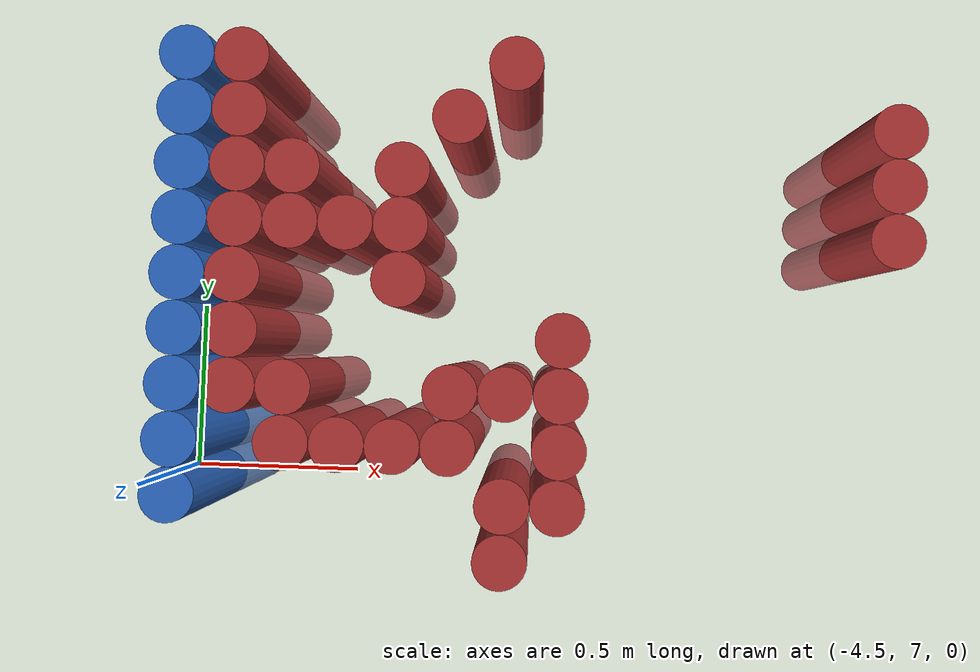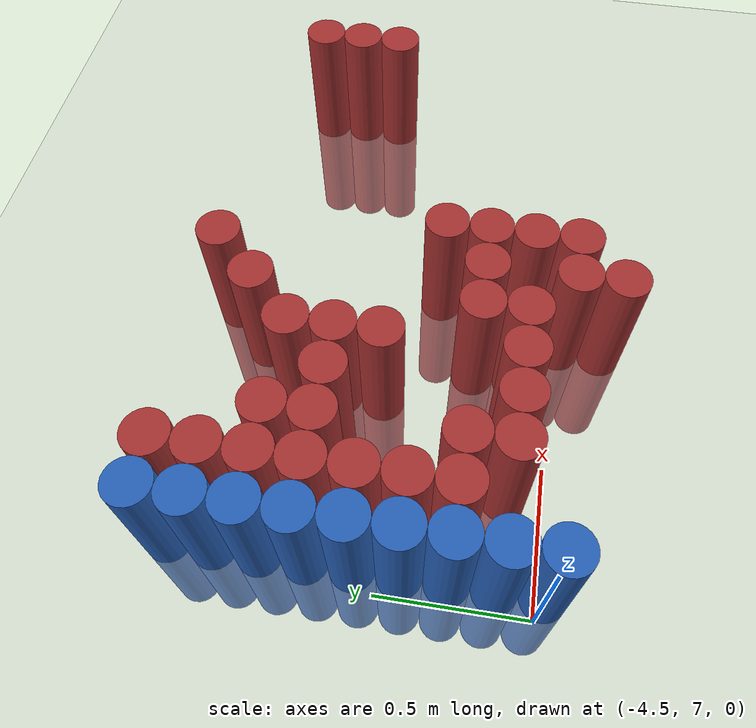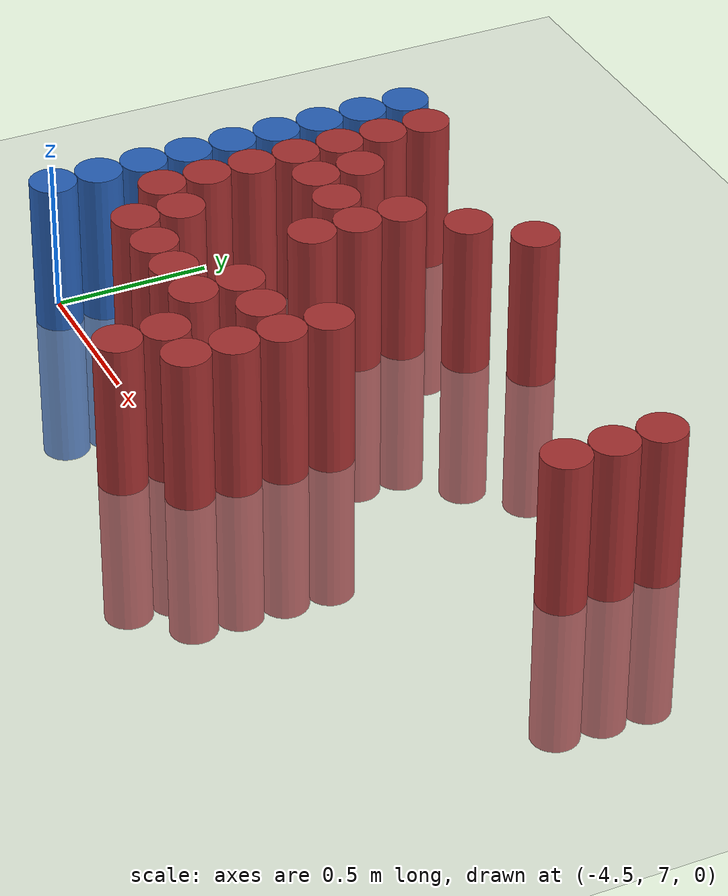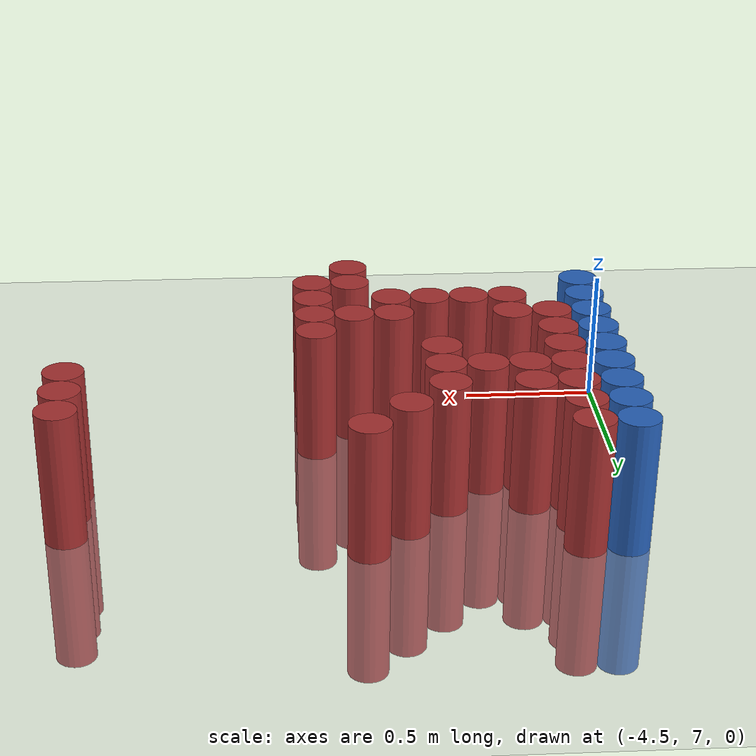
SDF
<sdf version="1.6">
 <world name="default">
  <model name="ground_plane">
   <static>1</static>
   <link name="link">
    <collision name="collision">
     <geometry><plane><normal>0 0 1</normal><size>100 100</size></plane></geometry>
     <surface><friction><ode><mu>100</mu><mu2>50</mu2></ode></friction></surface>
    </collision>
    <visual name="visual">
     <cast_shadows>0</cast_shadows>
     <geometry><plane><normal>0 0 1</normal><size>100 100</size></plane></geometry>
     <material>
      <script><uri>file://media/materials/scripts/gazebo.material</uri><name>Gazebo/Grey</name></script>
     </material>
    </visual>
   </link>
  </model>
  <model name="unit_cylinder_108">
   <static>1</static>
   <pose>-4.425000 6.975000 0.000000 0.000000 0.000000 0.000000</pose>
   <link name="link">
    <inertial>
     <mass>1</mass>
     <inertia><ixx>0.145833</ixx><ixy>0</ixy><ixz>0</ixz><iyy>0.145833</iyy><iyz>0</iyz><izz>0.125</izz></inertia>
    </inertial>
    <collision name="collision">
     <geometry><cylinder><radius>0.075000</radius><length>1</length></cylinder></geometry>
    </collision>
    <visual name="visual">
     <geometry><cylinder><radius>0.075000</radius><length>1</length></cylinder></geometry>
     <material>
      <ambient>0.152000 0.379000 0.720000 1</ambient>
      <diffuse>0.152000 0.379000 0.720000 1</diffuse>
     </material>
     <material>
      <script><name>Gazebo/Grey</name><uri>file://media/materials/scripts/gazebo.material</uri></script>
     </material>
    </visual>
    <sensor name="sensor_contact" type="contact"><contact><collision>collision</collision></contact></sensor>
   </link>
   <plugin filename="gz-sim-touchplugin-system" name="gz::sim::systems::TouchPlugin">
    <target>robot</target>
    <namespace>robot</namespace>
    <time>0.001</time>
    <enabled>true</enabled>
   </plugin>
  </model>
  <model name="unit_cylinder_109">
   <static>1</static>
   <pose>-4.425000 7.125000 0.000000 0.000000 0.000000 0.000000</pose>
   <link name="link">
    <inertial>
     <mass>1</mass>
     <inertia><ixx>0.145833</ixx><ixy>0</ixy><ixz>0</ixz><iyy>0.145833</iyy><iyz>0</iyz><izz>0.125</izz></inertia>
    </inertial>
    <collision name="collision">
     <geometry><cylinder><radius>0.075000</radius><length>1</length></cylinder></geometry>
    </collision>
    <visual name="visual">
     <geometry><cylinder><radius>0.075000</radius><length>1</length></cylinder></geometry>
     <material>
      <ambient>0.152000 0.379000 0.720000 1</ambient>
      <diffuse>0.152000 0.379000 0.720000 1</diffuse>
     </material>
     <material>
      <script><name>Gazebo/Grey</name><uri>file://media/materials/scripts/gazebo.material</uri></script>
     </material>
    </visual>
    <sensor name="sensor_contact" type="contact"><contact><collision>collision</collision></contact></sensor>
   </link>
   <plugin filename="gz-sim-touchplugin-system" name="gz::sim::systems::TouchPlugin">
    <target>robot</target>
    <namespace>robot</namespace>
    <time>0.001</time>
    <enabled>true</enabled>
   </plugin>
  </model>
  <model name="unit_cylinder_110">
   <static>1</static>
   <pose>-4.425000 7.275000 0.000000 0.000000 0.000000 0.000000</pose>
   <link name="link">
    <inertial>
     <mass>1</mass>
     <inertia><ixx>0.145833</ixx><ixy>0</ixy><ixz>0</ixz><iyy>0.145833</iyy><iyz>0</iyz><izz>0.125</izz></inertia>
    </inertial>
    <collision name="collision">
     <geometry><cylinder><radius>0.075000</radius><length>1</length></cylinder></geometry>
    </collision>
    <visual name="visual">
     <geometry><cylinder><radius>0.075000</radius><length>1</length></cylinder></geometry>
     <material>
      <ambient>0.152000 0.379000 0.720000 1</ambient>
      <diffuse>0.152000 0.379000 0.720000 1</diffuse>
     </material>
     <material>
      <script><name>Gazebo/Grey</name><uri>file://media/materials/scripts/gazebo.material</uri></script>
     </material>
    </visual>
    <sensor name="sensor_contact" type="contact"><contact><collision>collision</collision></contact></sensor>
   </link>
   <plugin filename="gz-sim-touchplugin-system" name="gz::sim::systems::TouchPlugin">
    <target>robot</target>
    <namespace>robot</namespace>
    <time>0.001</time>
    <enabled>true</enabled>
   </plugin>
  </model>
  <model name="unit_cylinder_111">
   <static>1</static>
   <pose>-4.425000 7.425000 0.000000 0.000000 0.000000 0.000000</pose>
   <link name="link">
    <inertial>
     <mass>1</mass>
     <inertia><ixx>0.145833</ixx><ixy>0</ixy><ixz>0</ixz><iyy>0.145833</iyy><iyz>0</iyz><izz>0.125</izz></inertia>
    </inertial>
    <collision name="collision">
     <geometry><cylinder><radius>0.075000</radius><length>1</length></cylinder></geometry>
    </collision>
    <visual name="visual">
     <geometry><cylinder><radius>0.075000</radius><length>1</length></cylinder></geometry>
     <material>
      <ambient>0.152000 0.379000 0.720000 1</ambient>
      <diffuse>0.152000 0.379000 0.720000 1</diffuse>
     </material>
     <material>
      <script><name>Gazebo/Grey</name><uri>file://media/materials/scripts/gazebo.material</uri></script>
     </material>
    </visual>
    <sensor name="sensor_contact" type="contact"><contact><collision>collision</collision></contact></sensor>
   </link>
   <plugin filename="gz-sim-touchplugin-system" name="gz::sim::systems::TouchPlugin">
    <target>robot</target>
    <namespace>robot</namespace>
    <time>0.001</time>
    <enabled>true</enabled>
   </plugin>
  </model>
  <model name="unit_cylinder_112">
   <static>1</static>
   <pose>-4.425000 7.575000 0.000000 0.000000 0.000000 0.000000</pose>
   <link name="link">
    <inertial>
     <mass>1</mass>
     <inertia><ixx>0.145833</ixx><ixy>0</ixy><ixz>0</ixz><iyy>0.145833</iyy><iyz>0</iyz><izz>0.125</izz></inertia>
    </inertial>
    <collision name="collision">
     <geometry><cylinder><radius>0.075000</radius><length>1</length></cylinder></geometry>
    </collision>
    <visual name="visual">
     <geometry><cylinder><radius>0.075000</radius><length>1</length></cylinder></geometry>
     <material>
      <ambient>0.152000 0.379000 0.720000 1</ambient>
      <diffuse>0.152000 0.379000 0.720000 1</diffuse>
     </material>
     <material>
      <script><name>Gazebo/Grey</name><uri>file://media/materials/scripts/gazebo.material</uri></script>
     </material>
    </visual>
    <sensor name="sensor_contact" type="contact"><contact><collision>collision</collision></contact></sensor>
   </link>
   <plugin filename="gz-sim-touchplugin-system" name="gz::sim::systems::TouchPlugin">
    <target>robot</target>
    <namespace>robot</namespace>
    <time>0.001</time>
    <enabled>true</enabled>
   </plugin>
  </model>
  <model name="unit_cylinder_113">
   <static>1</static>
   <pose>-4.425000 7.725000 0.000000 0.000000 0.000000 0.000000</pose>
   <link name="link">
    <inertial>
     <mass>1</mass>
     <inertia><ixx>0.145833</ixx><ixy>0</ixy><ixz>0</ixz><iyy>0.145833</iyy><iyz>0</iyz><izz>0.125</izz></inertia>
    </inertial>
    <collision name="collision">
     <geometry><cylinder><radius>0.075000</radius><length>1</length></cylinder></geometry>
    </collision>
    <visual name="visual">
     <geometry><cylinder><radius>0.075000</radius><length>1</length></cylinder></geometry>
     <material>
      <ambient>0.152000 0.379000 0.720000 1</ambient>
      <diffuse>0.152000 0.379000 0.720000 1</diffuse>
     </material>
     <material>
      <script><name>Gazebo/Grey</name><uri>file://media/materials/scripts/gazebo.material</uri></script>
     </material>
    </visual>
    <sensor name="sensor_contact" type="contact"><contact><collision>collision</collision></contact></sensor>
   </link>
   <plugin filename="gz-sim-touchplugin-system" name="gz::sim::systems::TouchPlugin">
    <target>robot</target>
    <namespace>robot</namespace>
    <time>0.001</time>
    <enabled>true</enabled>
   </plugin>
  </model>
  <model name="unit_cylinder_114">
   <static>1</static>
   <pose>-4.425000 7.875000 0.000000 0.000000 0.000000 0.000000</pose>
   <link name="link">
    <inertial>
     <mass>1</mass>
     <inertia><ixx>0.145833</ixx><ixy>0</ixy><ixz>0</ixz><iyy>0.145833</iyy><iyz>0</iyz><izz>0.125</izz></inertia>
    </inertial>
    <collision name="collision">
     <geometry><cylinder><radius>0.075000</radius><length>1</length></cylinder></geometry>
    </collision>
    <visual name="visual">
     <geometry><cylinder><radius>0.075000</radius><length>1</length></cylinder></geometry>
     <material>
      <ambient>0.152000 0.379000 0.720000 1</ambient>
      <diffuse>0.152000 0.379000 0.720000 1</diffuse>
     </material>
     <material>
      <script><name>Gazebo/Grey</name><uri>file://media/materials/scripts/gazebo.material</uri></script>
     </material>
    </visual>
    <sensor name="sensor_contact" type="contact"><contact><collision>collision</collision></contact></sensor>
   </link>
   <plugin filename="gz-sim-touchplugin-system" name="gz::sim::systems::TouchPlugin">
    <target>robot</target>
    <namespace>robot</namespace>
    <time>0.001</time>
    <enabled>true</enabled>
   </plugin>
  </model>
  <model name="unit_cylinder_115">
   <static>1</static>
   <pose>-4.425000 8.025000 0.000000 0.000000 0.000000 0.000000</pose>
   <link name="link">
    <inertial>
     <mass>1</mass>
     <inertia><ixx>0.145833</ixx><ixy>0</ixy><ixz>0</ixz><iyy>0.145833</iyy><iyz>0</iyz><izz>0.125</izz></inertia>
    </inertial>
    <collision name="collision">
     <geometry><cylinder><radius>0.075000</radius><length>1</length></cylinder></geometry>
    </collision>
    <visual name="visual">
     <geometry><cylinder><radius>0.075000</radius><length>1</length></cylinder></geometry>
     <material>
      <ambient>0.152000 0.379000 0.720000 1</ambient>
      <diffuse>0.152000 0.379000 0.720000 1</diffuse>
     </material>
     <material>
      <script><name>Gazebo/Grey</name><uri>file://media/materials/scripts/gazebo.material</uri></script>
     </material>
    </visual>
    <sensor name="sensor_contact" type="contact"><contact><collision>collision</collision></contact></sensor>
   </link>
   <plugin filename="gz-sim-touchplugin-system" name="gz::sim::systems::TouchPlugin">
    <target>robot</target>
    <namespace>robot</namespace>
    <time>0.001</time>
    <enabled>true</enabled>
   </plugin>
  </model>
  <model name="unit_cylinder_116">
   <static>1</static>
   <pose>-4.425000 8.175000 0.000000 0.000000 0.000000 0.000000</pose>
   <link name="link">
    <inertial>
     <mass>1</mass>
     <inertia><ixx>0.145833</ixx><ixy>0</ixy><ixz>0</ixz><iyy>0.145833</iyy><iyz>0</iyz><izz>0.125</izz></inertia>
    </inertial>
    <collision name="collision">
     <geometry><cylinder><radius>0.075000</radius><length>1</length></cylinder></geometry>
    </collision>
    <visual name="visual">
     <geometry><cylinder><radius>0.075000</radius><length>1</length></cylinder></geometry>
     <material>
      <ambient>0.152000 0.379000 0.720000 1</ambient>
      <diffuse>0.152000 0.379000 0.720000 1</diffuse>
     </material>
     <material>
      <script><name>Gazebo/Grey</name><uri>file://media/materials/scripts/gazebo.material</uri></script>
     </material>
    </visual>
    <sensor name="sensor_contact" type="contact"><contact><collision>collision</collision></contact></sensor>
   </link>
   <plugin filename="gz-sim-touchplugin-system" name="gz::sim::systems::TouchPlugin">
    <target>robot</target>
    <namespace>robot</namespace>
    <time>0.001</time>
    <enabled>true</enabled>
   </plugin>
  </model>
  <model name="unit_cylinder_132">
   <static>1</static>
   <pose>-4.275000 7.275000 0.000000 0.000000 0.000000 0.000000</pose>
   <link name="link">
    <inertial>
     <mass>1</mass>
     <inertia><ixx>0.145833</ixx><ixy>0</ixy><ixz>0</ixz><iyy>0.145833</iyy><iyz>0</iyz><izz>0.125</izz></inertia>
    </inertial>
    <collision name="collision">
     <geometry><cylinder><radius>0.075000</radius><length>1</length></cylinder></geometry>
    </collision>
    <visual name="visual">
     <geometry><cylinder><radius>0.075000</radius><length>1</length></cylinder></geometry>
     <material>
      <ambient>0.648000 0.192000 0.192000 1</ambient>
      <diffuse>0.648000 0.192000 0.192000 1</diffuse>
     </material>
     <material>
      <script><name>Gazebo/Grey</name><uri>file://media/materials/scripts/gazebo.material</uri></script>
     </material>
    </visual>
    <sensor name="sensor_contact" type="contact"><contact><collision>collision</collision></contact></sensor>
   </link>
   <plugin filename="gz-sim-touchplugin-system" name="gz::sim::systems::TouchPlugin">
    <target>robot</target>
    <namespace>robot</namespace>
    <time>0.001</time>
    <enabled>true</enabled>
   </plugin>
  </model>
  <model name="unit_cylinder_133">
   <static>1</static>
   <pose>-4.275000 7.425000 0.000000 0.000000 0.000000 0.000000</pose>
   <link name="link">
    <inertial>
     <mass>1</mass>
     <inertia><ixx>0.145833</ixx><ixy>0</ixy><ixz>0</ixz><iyy>0.145833</iyy><iyz>0</iyz><izz>0.125</izz></inertia>
    </inertial>
    <collision name="collision">
     <geometry><cylinder><radius>0.075000</radius><length>1</length></cylinder></geometry>
    </collision>
    <visual name="visual">
     <geometry><cylinder><radius>0.075000</radius><length>1</length></cylinder></geometry>
     <material>
      <ambient>0.648000 0.192000 0.192000 1</ambient>
      <diffuse>0.648000 0.192000 0.192000 1</diffuse>
     </material>
     <material>
      <script><name>Gazebo/Grey</name><uri>file://media/materials/scripts/gazebo.material</uri></script>
     </material>
    </visual>
    <sensor name="sensor_contact" type="contact"><contact><collision>collision</collision></contact></sensor>
   </link>
   <plugin filename="gz-sim-touchplugin-system" name="gz::sim::systems::TouchPlugin">
    <target>robot</target>
    <namespace>robot</namespace>
    <time>0.001</time>
    <enabled>true</enabled>
   </plugin>
  </model>
  <model name="unit_cylinder_134">
   <static>1</static>
   <pose>-4.275000 7.575000 0.000000 0.000000 0.000000 0.000000</pose>
   <link name="link">
    <inertial>
     <mass>1</mass>
     <inertia><ixx>0.145833</ixx><ixy>0</ixy><ixz>0</ixz><iyy>0.145833</iyy><iyz>0</iyz><izz>0.125</izz></inertia>
    </inertial>
    <collision name="collision">
     <geometry><cylinder><radius>0.075000</radius><length>1</length></cylinder></geometry>
    </collision>
    <visual name="visual">
     <geometry><cylinder><radius>0.075000</radius><length>1</length></cylinder></geometry>
     <material>
      <ambient>0.648000 0.192000 0.192000 1</ambient>
      <diffuse>0.648000 0.192000 0.192000 1</diffuse>
     </material>
     <material>
      <script><name>Gazebo/Grey</name><uri>file://media/materials/scripts/gazebo.material</uri></script>
     </material>
    </visual>
    <sensor name="sensor_contact" type="contact"><contact><collision>collision</collision></contact></sensor>
   </link>
   <plugin filename="gz-sim-touchplugin-system" name="gz::sim::systems::TouchPlugin">
    <target>robot</target>
    <namespace>robot</namespace>
    <time>0.001</time>
    <enabled>true</enabled>
   </plugin>
  </model>
  <model name="unit_cylinder_135">
   <static>1</static>
   <pose>-4.275000 7.725000 0.000000 0.000000 0.000000 0.000000</pose>
   <link name="link">
    <inertial>
     <mass>1</mass>
     <inertia><ixx>0.145833</ixx><ixy>0</ixy><ixz>0</ixz><iyy>0.145833</iyy><iyz>0</iyz><izz>0.125</izz></inertia>
    </inertial>
    <collision name="collision">
     <geometry><cylinder><radius>0.075000</radius><length>1</length></cylinder></geometry>
    </collision>
    <visual name="visual">
     <geometry><cylinder><radius>0.075000</radius><length>1</length></cylinder></geometry>
     <material>
      <ambient>0.648000 0.192000 0.192000 1</ambient>
      <diffuse>0.648000 0.192000 0.192000 1</diffuse>
     </material>
     <material>
      <script><name>Gazebo/Grey</name><uri>file://media/materials/scripts/gazebo.material</uri></script>
     </material>
    </visual>
    <sensor name="sensor_contact" type="contact"><contact><collision>collision</collision></contact></sensor>
   </link>
   <plugin filename="gz-sim-touchplugin-system" name="gz::sim::systems::TouchPlugin">
    <target>robot</target>
    <namespace>robot</namespace>
    <time>0.001</time>
    <enabled>true</enabled>
   </plugin>
  </model>
  <model name="unit_cylinder_136">
   <static>1</static>
   <pose>-4.275000 7.875000 0.000000 0.000000 0.000000 0.000000</pose>
   <link name="link">
    <inertial>
     <mass>1</mass>
     <inertia><ixx>0.145833</ixx><ixy>0</ixy><ixz>0</ixz><iyy>0.145833</iyy><iyz>0</iyz><izz>0.125</izz></inertia>
    </inertial>
    <collision name="collision">
     <geometry><cylinder><radius>0.075000</radius><length>1</length></cylinder></geometry>
    </collision>
    <visual name="visual">
     <geometry><cylinder><radius>0.075000</radius><length>1</length></cylinder></geometry>
     <material>
      <ambient>0.648000 0.192000 0.192000 1</ambient>
      <diffuse>0.648000 0.192000 0.192000 1</diffuse>
     </material>
     <material>
      <script><name>Gazebo/Grey</name><uri>file://media/materials/scripts/gazebo.material</uri></script>
     </material>
    </visual>
    <sensor name="sensor_contact" type="contact"><contact><collision>collision</collision></contact></sensor>
   </link>
   <plugin filename="gz-sim-touchplugin-system" name="gz::sim::systems::TouchPlugin">
    <target>robot</target>
    <namespace>robot</namespace>
    <time>0.001</time>
    <enabled>true</enabled>
   </plugin>
  </model>
  <model name="unit_cylinder_137">
   <static>1</static>
   <pose>-4.275000 8.025000 0.000000 0.000000 0.000000 0.000000</pose>
   <link name="link">
    <inertial>
     <mass>1</mass>
     <inertia><ixx>0.145833</ixx><ixy>0</ixy><ixz>0</ixz><iyy>0.145833</iyy><iyz>0</iyz><izz>0.125</izz></inertia>
    </inertial>
    <collision name="collision">
     <geometry><cylinder><radius>0.075000</radius><length>1</length></cylinder></geometry>
    </collision>
    <visual name="visual">
     <geometry><cylinder><radius>0.075000</radius><length>1</length></cylinder></geometry>
     <material>
      <ambient>0.648000 0.192000 0.192000 1</ambient>
      <diffuse>0.648000 0.192000 0.192000 1</diffuse>
     </material>
     <material>
      <script><name>Gazebo/Grey</name><uri>file://media/materials/scripts/gazebo.material</uri></script>
     </material>
    </visual>
    <sensor name="sensor_contact" type="contact"><contact><collision>collision</collision></contact></sensor>
   </link>
   <plugin filename="gz-sim-touchplugin-system" name="gz::sim::systems::TouchPlugin">
    <target>robot</target>
    <namespace>robot</namespace>
    <time>0.001</time>
    <enabled>true</enabled>
   </plugin>
  </model>
  <model name="unit_cylinder_138">
   <static>1</static>
   <pose>-4.275000 8.175000 0.000000 0.000000 0.000000 0.000000</pose>
   <link name="link">
    <inertial>
     <mass>1</mass>
     <inertia><ixx>0.145833</ixx><ixy>0</ixy><ixz>0</ixz><iyy>0.145833</iyy><iyz>0</iyz><izz>0.125</izz></inertia>
    </inertial>
    <collision name="collision">
     <geometry><cylinder><radius>0.075000</radius><length>1</length></cylinder></geometry>
    </collision>
    <visual name="visual">
     <geometry><cylinder><radius>0.075000</radius><length>1</length></cylinder></geometry>
     <material>
      <ambient>0.648000 0.192000 0.192000 1</ambient>
      <diffuse>0.648000 0.192000 0.192000 1</diffuse>
     </material>
     <material>
      <script><name>Gazebo/Grey</name><uri>file://media/materials/scripts/gazebo.material</uri></script>
     </material>
    </visual>
    <sensor name="sensor_contact" type="contact"><contact><collision>collision</collision></contact></sensor>
   </link>
   <plugin filename="gz-sim-touchplugin-system" name="gz::sim::systems::TouchPlugin">
    <target>robot</target>
    <namespace>robot</namespace>
    <time>0.001</time>
    <enabled>true</enabled>
   </plugin>
  </model>
  <model name="unit_cylinder_146">
   <static>1</static>
   <pose>-4.125000 7.125000 0.000000 0.000000 0.000000 0.000000</pose>
   <link name="link">
    <inertial>
     <mass>1</mass>
     <inertia><ixx>0.145833</ixx><ixy>0</ixy><ixz>0</ixz><iyy>0.145833</iyy><iyz>0</iyz><izz>0.125</izz></inertia>
    </inertial>
    <collision name="collision">
     <geometry><cylinder><radius>0.075000</radius><length>1</length></cylinder></geometry>
    </collision>
    <visual name="visual">
     <geometry><cylinder><radius>0.075000</radius><length>1</length></cylinder></geometry>
     <material>
      <ambient>0.648000 0.192000 0.192000 1</ambient>
      <diffuse>0.648000 0.192000 0.192000 1</diffuse>
     </material>
     <material>
      <script><name>Gazebo/Grey</name><uri>file://media/materials/scripts/gazebo.material</uri></script>
     </material>
    </visual>
    <sensor name="sensor_contact" type="contact"><contact><collision>collision</collision></contact></sensor>
   </link>
   <plugin filename="gz-sim-touchplugin-system" name="gz::sim::systems::TouchPlugin">
    <target>robot</target>
    <namespace>robot</namespace>
    <time>0.001</time>
    <enabled>true</enabled>
   </plugin>
  </model>
  <model name="unit_cylinder_147">
   <static>1</static>
   <pose>-4.125000 7.275000 0.000000 0.000000 0.000000 0.000000</pose>
   <link name="link">
    <inertial>
     <mass>1</mass>
     <inertia><ixx>0.145833</ixx><ixy>0</ixy><ixz>0</ixz><iyy>0.145833</iyy><iyz>0</iyz><izz>0.125</izz></inertia>
    </inertial>
    <collision name="collision">
     <geometry><cylinder><radius>0.075000</radius><length>1</length></cylinder></geometry>
    </collision>
    <visual name="visual">
     <geometry><cylinder><radius>0.075000</radius><length>1</length></cylinder></geometry>
     <material>
      <ambient>0.648000 0.192000 0.192000 1</ambient>
      <diffuse>0.648000 0.192000 0.192000 1</diffuse>
     </material>
     <material>
      <script><name>Gazebo/Grey</name><uri>file://media/materials/scripts/gazebo.material</uri></script>
     </material>
    </visual>
    <sensor name="sensor_contact" type="contact"><contact><collision>collision</collision></contact></sensor>
   </link>
   <plugin filename="gz-sim-touchplugin-system" name="gz::sim::systems::TouchPlugin">
    <target>robot</target>
    <namespace>robot</namespace>
    <time>0.001</time>
    <enabled>true</enabled>
   </plugin>
  </model>
  <model name="unit_cylinder_148">
   <static>1</static>
   <pose>-4.125000 7.725000 0.000000 0.000000 0.000000 0.000000</pose>
   <link name="link">
    <inertial>
     <mass>1</mass>
     <inertia><ixx>0.145833</ixx><ixy>0</ixy><ixz>0</ixz><iyy>0.145833</iyy><iyz>0</iyz><izz>0.125</izz></inertia>
    </inertial>
    <collision name="collision">
     <geometry><cylinder><radius>0.075000</radius><length>1</length></cylinder></geometry>
    </collision>
    <visual name="visual">
     <geometry><cylinder><radius>0.075000</radius><length>1</length></cylinder></geometry>
     <material>
      <ambient>0.648000 0.192000 0.192000 1</ambient>
      <diffuse>0.648000 0.192000 0.192000 1</diffuse>
     </material>
     <material>
      <script><name>Gazebo/Grey</name><uri>file://media/materials/scripts/gazebo.material</uri></script>
     </material>
    </visual>
    <sensor name="sensor_contact" type="contact"><contact><collision>collision</collision></contact></sensor>
   </link>
   <plugin filename="gz-sim-touchplugin-system" name="gz::sim::systems::TouchPlugin">
    <target>robot</target>
    <namespace>robot</namespace>
    <time>0.001</time>
    <enabled>true</enabled>
   </plugin>
  </model>
  <model name="unit_cylinder_149">
   <static>1</static>
   <pose>-4.125000 7.875000 0.000000 0.000000 0.000000 0.000000</pose>
   <link name="link">
    <inertial>
     <mass>1</mass>
     <inertia><ixx>0.145833</ixx><ixy>0</ixy><ixz>0</ixz><iyy>0.145833</iyy><iyz>0</iyz><izz>0.125</izz></inertia>
    </inertial>
    <collision name="collision">
     <geometry><cylinder><radius>0.075000</radius><length>1</length></cylinder></geometry>
    </collision>
    <visual name="visual">
     <geometry><cylinder><radius>0.075000</radius><length>1</length></cylinder></geometry>
     <material>
      <ambient>0.648000 0.192000 0.192000 1</ambient>
      <diffuse>0.648000 0.192000 0.192000 1</diffuse>
     </material>
     <material>
      <script><name>Gazebo/Grey</name><uri>file://media/materials/scripts/gazebo.material</uri></script>
     </material>
    </visual>
    <sensor name="sensor_contact" type="contact"><contact><collision>collision</collision></contact></sensor>
   </link>
   <plugin filename="gz-sim-touchplugin-system" name="gz::sim::systems::TouchPlugin">
    <target>robot</target>
    <namespace>robot</namespace>
    <time>0.001</time>
    <enabled>true</enabled>
   </plugin>
  </model>
  <model name="unit_cylinder_155">
   <static>1</static>
   <pose>-3.975000 7.125000 0.000000 0.000000 0.000000 0.000000</pose>
   <link name="link">
    <inertial>
     <mass>1</mass>
     <inertia><ixx>0.145833</ixx><ixy>0</ixy><ixz>0</ixz><iyy>0.145833</iyy><iyz>0</iyz><izz>0.125</izz></inertia>
    </inertial>
    <collision name="collision">
     <geometry><cylinder><radius>0.075000</radius><length>1</length></cylinder></geometry>
    </collision>
    <visual name="visual">
     <geometry><cylinder><radius>0.075000</radius><length>1</length></cylinder></geometry>
     <material>
      <ambient>0.648000 0.192000 0.192000 1</ambient>
      <diffuse>0.648000 0.192000 0.192000 1</diffuse>
     </material>
     <material>
      <script><name>Gazebo/Grey</name><uri>file://media/materials/scripts/gazebo.material</uri></script>
     </material>
    </visual>
    <sensor name="sensor_contact" type="contact"><contact><collision>collision</collision></contact></sensor>
   </link>
   <plugin filename="gz-sim-touchplugin-system" name="gz::sim::systems::TouchPlugin">
    <target>robot</target>
    <namespace>robot</namespace>
    <time>0.001</time>
    <enabled>true</enabled>
   </plugin>
  </model>
  <model name="unit_cylinder_156">
   <static>1</static>
   <pose>-3.975000 7.725000 0.000000 0.000000 0.000000 0.000000</pose>
   <link name="link">
    <inertial>
     <mass>1</mass>
     <inertia><ixx>0.145833</ixx><ixy>0</ixy><ixz>0</ixz><iyy>0.145833</iyy><iyz>0</iyz><izz>0.125</izz></inertia>
    </inertial>
    <collision name="collision">
     <geometry><cylinder><radius>0.075000</radius><length>1</length></cylinder></geometry>
    </collision>
    <visual name="visual">
     <geometry><cylinder><radius>0.075000</radius><length>1</length></cylinder></geometry>
     <material>
      <ambient>0.648000 0.192000 0.192000 1</ambient>
      <diffuse>0.648000 0.192000 0.192000 1</diffuse>
     </material>
     <material>
      <script><name>Gazebo/Grey</name><uri>file://media/materials/scripts/gazebo.material</uri></script>
     </material>
    </visual>
    <sensor name="sensor_contact" type="contact"><contact><collision>collision</collision></contact></sensor>
   </link>
   <plugin filename="gz-sim-touchplugin-system" name="gz::sim::systems::TouchPlugin">
    <target>robot</target>
    <namespace>robot</namespace>
    <time>0.001</time>
    <enabled>true</enabled>
   </plugin>
  </model>
  <model name="unit_cylinder_168">
   <static>1</static>
   <pose>-3.825000 7.125000 0.000000 0.000000 0.000000 0.000000</pose>
   <link name="link">
    <inertial>
     <mass>1</mass>
     <inertia><ixx>0.145833</ixx><ixy>0</ixy><ixz>0</ixz><iyy>0.145833</iyy><iyz>0</iyz><izz>0.125</izz></inertia>
    </inertial>
    <collision name="collision">
     <geometry><cylinder><radius>0.075000</radius><length>1</length></cylinder></geometry>
    </collision>
    <visual name="visual">
     <geometry><cylinder><radius>0.075000</radius><length>1</length></cylinder></geometry>
     <material>
      <ambient>0.648000 0.192000 0.192000 1</ambient>
      <diffuse>0.648000 0.192000 0.192000 1</diffuse>
     </material>
     <material>
      <script><name>Gazebo/Grey</name><uri>file://media/materials/scripts/gazebo.material</uri></script>
     </material>
    </visual>
    <sensor name="sensor_contact" type="contact"><contact><collision>collision</collision></contact></sensor>
   </link>
   <plugin filename="gz-sim-touchplugin-system" name="gz::sim::systems::TouchPlugin">
    <target>robot</target>
    <namespace>robot</namespace>
    <time>0.001</time>
    <enabled>true</enabled>
   </plugin>
  </model>
  <model name="unit_cylinder_169">
   <static>1</static>
   <pose>-3.825000 7.575000 0.000000 0.000000 0.000000 0.000000</pose>
   <link name="link">
    <inertial>
     <mass>1</mass>
     <inertia><ixx>0.145833</ixx><ixy>0</ixy><ixz>0</ixz><iyy>0.145833</iyy><iyz>0</iyz><izz>0.125</izz></inertia>
    </inertial>
    <collision name="collision">
     <geometry><cylinder><radius>0.075000</radius><length>1</length></cylinder></geometry>
    </collision>
    <visual name="visual">
     <geometry><cylinder><radius>0.075000</radius><length>1</length></cylinder></geometry>
     <material>
      <ambient>0.648000 0.192000 0.192000 1</ambient>
      <diffuse>0.648000 0.192000 0.192000 1</diffuse>
     </material>
     <material>
      <script><name>Gazebo/Grey</name><uri>file://media/materials/scripts/gazebo.material</uri></script>
     </material>
    </visual>
    <sensor name="sensor_contact" type="contact"><contact><collision>collision</collision></contact></sensor>
   </link>
   <plugin filename="gz-sim-touchplugin-system" name="gz::sim::systems::TouchPlugin">
    <target>robot</target>
    <namespace>robot</namespace>
    <time>0.001</time>
    <enabled>true</enabled>
   </plugin>
  </model>
  <model name="unit_cylinder_170">
   <static>1</static>
   <pose>-3.825000 7.725000 0.000000 0.000000 0.000000 0.000000</pose>
   <link name="link">
    <inertial>
     <mass>1</mass>
     <inertia><ixx>0.145833</ixx><ixy>0</ixy><ixz>0</ixz><iyy>0.145833</iyy><iyz>0</iyz><izz>0.125</izz></inertia>
    </inertial>
    <collision name="collision">
     <geometry><cylinder><radius>0.075000</radius><length>1</length></cylinder></geometry>
    </collision>
    <visual name="visual">
     <geometry><cylinder><radius>0.075000</radius><length>1</length></cylinder></geometry>
     <material>
      <ambient>0.648000 0.192000 0.192000 1</ambient>
      <diffuse>0.648000 0.192000 0.192000 1</diffuse>
     </material>
     <material>
      <script><name>Gazebo/Grey</name><uri>file://media/materials/scripts/gazebo.material</uri></script>
     </material>
    </visual>
    <sensor name="sensor_contact" type="contact"><contact><collision>collision</collision></contact></sensor>
   </link>
   <plugin filename="gz-sim-touchplugin-system" name="gz::sim::systems::TouchPlugin">
    <target>robot</target>
    <namespace>robot</namespace>
    <time>0.001</time>
    <enabled>true</enabled>
   </plugin>
  </model>
  <model name="unit_cylinder_171">
   <static>1</static>
   <pose>-3.825000 7.875000 0.000000 0.000000 0.000000 0.000000</pose>
   <link name="link">
    <inertial>
     <mass>1</mass>
     <inertia><ixx>0.145833</ixx><ixy>0</ixy><ixz>0</ixz><iyy>0.145833</iyy><iyz>0</iyz><izz>0.125</izz></inertia>
    </inertial>
    <collision name="collision">
     <geometry><cylinder><radius>0.075000</radius><length>1</length></cylinder></geometry>
    </collision>
    <visual name="visual">
     <geometry><cylinder><radius>0.075000</radius><length>1</length></cylinder></geometry>
     <material>
      <ambient>0.648000 0.192000 0.192000 1</ambient>
      <diffuse>0.648000 0.192000 0.192000 1</diffuse>
     </material>
     <material>
      <script><name>Gazebo/Grey</name><uri>file://media/materials/scripts/gazebo.material</uri></script>
     </material>
    </visual>
    <sensor name="sensor_contact" type="contact"><contact><collision>collision</collision></contact></sensor>
   </link>
   <plugin filename="gz-sim-touchplugin-system" name="gz::sim::systems::TouchPlugin">
    <target>robot</target>
    <namespace>robot</namespace>
    <time>0.001</time>
    <enabled>true</enabled>
   </plugin>
  </model>
  <model name="unit_cylinder_181">
   <static>1</static>
   <pose>-3.675000 7.125000 0.000000 0.000000 0.000000 0.000000</pose>
   <link name="link">
    <inertial>
     <mass>1</mass>
     <inertia><ixx>0.145833</ixx><ixy>0</ixy><ixz>0</ixz><iyy>0.145833</iyy><iyz>0</iyz><izz>0.125</izz></inertia>
    </inertial>
    <collision name="collision">
     <geometry><cylinder><radius>0.075000</radius><length>1</length></cylinder></geometry>
    </collision>
    <visual name="visual">
     <geometry><cylinder><radius>0.075000</radius><length>1</length></cylinder></geometry>
     <material>
      <ambient>0.648000 0.192000 0.192000 1</ambient>
      <diffuse>0.648000 0.192000 0.192000 1</diffuse>
     </material>
     <material>
      <script><name>Gazebo/Grey</name><uri>file://media/materials/scripts/gazebo.material</uri></script>
     </material>
    </visual>
    <sensor name="sensor_contact" type="contact"><contact><collision>collision</collision></contact></sensor>
   </link>
   <plugin filename="gz-sim-touchplugin-system" name="gz::sim::systems::TouchPlugin">
    <target>robot</target>
    <namespace>robot</namespace>
    <time>0.001</time>
    <enabled>true</enabled>
   </plugin>
  </model>
  <model name="unit_cylinder_182">
   <static>1</static>
   <pose>-3.675000 7.275000 0.000000 0.000000 0.000000 0.000000</pose>
   <link name="link">
    <inertial>
     <mass>1</mass>
     <inertia><ixx>0.145833</ixx><ixy>0</ixy><ixz>0</ixz><iyy>0.145833</iyy><iyz>0</iyz><izz>0.125</izz></inertia>
    </inertial>
    <collision name="collision">
     <geometry><cylinder><radius>0.075000</radius><length>1</length></cylinder></geometry>
    </collision>
    <visual name="visual">
     <geometry><cylinder><radius>0.075000</radius><length>1</length></cylinder></geometry>
     <material>
      <ambient>0.648000 0.192000 0.192000 1</ambient>
      <diffuse>0.648000 0.192000 0.192000 1</diffuse>
     </material>
     <material>
      <script><name>Gazebo/Grey</name><uri>file://media/materials/scripts/gazebo.material</uri></script>
     </material>
    </visual>
    <sensor name="sensor_contact" type="contact"><contact><collision>collision</collision></contact></sensor>
   </link>
   <plugin filename="gz-sim-touchplugin-system" name="gz::sim::systems::TouchPlugin">
    <target>robot</target>
    <namespace>robot</namespace>
    <time>0.001</time>
    <enabled>true</enabled>
   </plugin>
  </model>
  <model name="unit_cylinder_183">
   <static>1</static>
   <pose>-3.675000 8.025000 0.000000 0.000000 0.000000 0.000000</pose>
   <link name="link">
    <inertial>
     <mass>1</mass>
     <inertia><ixx>0.145833</ixx><ixy>0</ixy><ixz>0</ixz><iyy>0.145833</iyy><iyz>0</iyz><izz>0.125</izz></inertia>
    </inertial>
    <collision name="collision">
     <geometry><cylinder><radius>0.075000</radius><length>1</length></cylinder></geometry>
    </collision>
    <visual name="visual">
     <geometry><cylinder><radius>0.075000</radius><length>1</length></cylinder></geometry>
     <material>
      <ambient>0.648000 0.192000 0.192000 1</ambient>
      <diffuse>0.648000 0.192000 0.192000 1</diffuse>
     </material>
     <material>
      <script><name>Gazebo/Grey</name><uri>file://media/materials/scripts/gazebo.material</uri></script>
     </material>
    </visual>
    <sensor name="sensor_contact" type="contact"><contact><collision>collision</collision></contact></sensor>
   </link>
   <plugin filename="gz-sim-touchplugin-system" name="gz::sim::systems::TouchPlugin">
    <target>robot</target>
    <namespace>robot</namespace>
    <time>0.001</time>
    <enabled>true</enabled>
   </plugin>
  </model>
  <model name="unit_cylinder_193">
   <static>1</static>
   <pose>-3.525000 6.825000 0.000000 0.000000 0.000000 0.000000</pose>
   <link name="link">
    <inertial>
     <mass>1</mass>
     <inertia><ixx>0.145833</ixx><ixy>0</ixy><ixz>0</ixz><iyy>0.145833</iyy><iyz>0</iyz><izz>0.125</izz></inertia>
    </inertial>
    <collision name="collision">
     <geometry><cylinder><radius>0.075000</radius><length>1</length></cylinder></geometry>
    </collision>
    <visual name="visual">
     <geometry><cylinder><radius>0.075000</radius><length>1</length></cylinder></geometry>
     <material>
      <ambient>0.648000 0.192000 0.192000 1</ambient>
      <diffuse>0.648000 0.192000 0.192000 1</diffuse>
     </material>
     <material>
      <script><name>Gazebo/Grey</name><uri>file://media/materials/scripts/gazebo.material</uri></script>
     </material>
    </visual>
    <sensor name="sensor_contact" type="contact"><contact><collision>collision</collision></contact></sensor>
   </link>
   <plugin filename="gz-sim-touchplugin-system" name="gz::sim::systems::TouchPlugin">
    <target>robot</target>
    <namespace>robot</namespace>
    <time>0.001</time>
    <enabled>true</enabled>
   </plugin>
  </model>
  <model name="unit_cylinder_194">
   <static>1</static>
   <pose>-3.525000 6.975000 0.000000 0.000000 0.000000 0.000000</pose>
   <link name="link">
    <inertial>
     <mass>1</mass>
     <inertia><ixx>0.145833</ixx><ixy>0</ixy><ixz>0</ixz><iyy>0.145833</iyy><iyz>0</iyz><izz>0.125</izz></inertia>
    </inertial>
    <collision name="collision">
     <geometry><cylinder><radius>0.075000</radius><length>1</length></cylinder></geometry>
    </collision>
    <visual name="visual">
     <geometry><cylinder><radius>0.075000</radius><length>1</length></cylinder></geometry>
     <material>
      <ambient>0.648000 0.192000 0.192000 1</ambient>
      <diffuse>0.648000 0.192000 0.192000 1</diffuse>
     </material>
     <material>
      <script><name>Gazebo/Grey</name><uri>file://media/materials/scripts/gazebo.material</uri></script>
     </material>
    </visual>
    <sensor name="sensor_contact" type="contact"><contact><collision>collision</collision></contact></sensor>
   </link>
   <plugin filename="gz-sim-touchplugin-system" name="gz::sim::systems::TouchPlugin">
    <target>robot</target>
    <namespace>robot</namespace>
    <time>0.001</time>
    <enabled>true</enabled>
   </plugin>
  </model>
  <model name="unit_cylinder_195">
   <static>1</static>
   <pose>-3.525000 7.275000 0.000000 0.000000 0.000000 0.000000</pose>
   <link name="link">
    <inertial>
     <mass>1</mass>
     <inertia><ixx>0.145833</ixx><ixy>0</ixy><ixz>0</ixz><iyy>0.145833</iyy><iyz>0</iyz><izz>0.125</izz></inertia>
    </inertial>
    <collision name="collision">
     <geometry><cylinder><radius>0.075000</radius><length>1</length></cylinder></geometry>
    </collision>
    <visual name="visual">
     <geometry><cylinder><radius>0.075000</radius><length>1</length></cylinder></geometry>
     <material>
      <ambient>0.648000 0.192000 0.192000 1</ambient>
      <diffuse>0.648000 0.192000 0.192000 1</diffuse>
     </material>
     <material>
      <script><name>Gazebo/Grey</name><uri>file://media/materials/scripts/gazebo.material</uri></script>
     </material>
    </visual>
    <sensor name="sensor_contact" type="contact"><contact><collision>collision</collision></contact></sensor>
   </link>
   <plugin filename="gz-sim-touchplugin-system" name="gz::sim::systems::TouchPlugin">
    <target>robot</target>
    <namespace>robot</namespace>
    <time>0.001</time>
    <enabled>true</enabled>
   </plugin>
  </model>
  <model name="unit_cylinder_196">
   <static>1</static>
   <pose>-3.525000 8.175000 0.000000 0.000000 0.000000 0.000000</pose>
   <link name="link">
    <inertial>
     <mass>1</mass>
     <inertia><ixx>0.145833</ixx><ixy>0</ixy><ixz>0</ixz><iyy>0.145833</iyy><iyz>0</iyz><izz>0.125</izz></inertia>
    </inertial>
    <collision name="collision">
     <geometry><cylinder><radius>0.075000</radius><length>1</length></cylinder></geometry>
    </collision>
    <visual name="visual">
     <geometry><cylinder><radius>0.075000</radius><length>1</length></cylinder></geometry>
     <material>
      <ambient>0.648000 0.192000 0.192000 1</ambient>
      <diffuse>0.648000 0.192000 0.192000 1</diffuse>
     </material>
     <material>
      <script><name>Gazebo/Grey</name><uri>file://media/materials/scripts/gazebo.material</uri></script>
     </material>
    </visual>
    <sensor name="sensor_contact" type="contact"><contact><collision>collision</collision></contact></sensor>
   </link>
   <plugin filename="gz-sim-touchplugin-system" name="gz::sim::systems::TouchPlugin">
    <target>robot</target>
    <namespace>robot</namespace>
    <time>0.001</time>
    <enabled>true</enabled>
   </plugin>
  </model>
  <model name="unit_cylinder_203">
   <static>1</static>
   <pose>-3.375000 6.975000 0.000000 0.000000 0.000000 0.000000</pose>
   <link name="link">
    <inertial>
     <mass>1</mass>
     <inertia><ixx>0.145833</ixx><ixy>0</ixy><ixz>0</ixz><iyy>0.145833</iyy><iyz>0</iyz><izz>0.125</izz></inertia>
    </inertial>
    <collision name="collision">
     <geometry><cylinder><radius>0.075000</radius><length>1</length></cylinder></geometry>
    </collision>
    <visual name="visual">
     <geometry><cylinder><radius>0.075000</radius><length>1</length></cylinder></geometry>
     <material>
      <ambient>0.648000 0.192000 0.192000 1</ambient>
      <diffuse>0.648000 0.192000 0.192000 1</diffuse>
     </material>
     <material>
      <script><name>Gazebo/Grey</name><uri>file://media/materials/scripts/gazebo.material</uri></script>
     </material>
    </visual>
    <sensor name="sensor_contact" type="contact"><contact><collision>collision</collision></contact></sensor>
   </link>
   <plugin filename="gz-sim-touchplugin-system" name="gz::sim::systems::TouchPlugin">
    <target>robot</target>
    <namespace>robot</namespace>
    <time>0.001</time>
    <enabled>true</enabled>
   </plugin>
  </model>
  <model name="unit_cylinder_204">
   <static>1</static>
   <pose>-3.375000 7.125000 0.000000 0.000000 0.000000 0.000000</pose>
   <link name="link">
    <inertial>
     <mass>1</mass>
     <inertia><ixx>0.145833</ixx><ixy>0</ixy><ixz>0</ixz><iyy>0.145833</iyy><iyz>0</iyz><izz>0.125</izz></inertia>
    </inertial>
    <collision name="collision">
     <geometry><cylinder><radius>0.075000</radius><length>1</length></cylinder></geometry>
    </collision>
    <visual name="visual">
     <geometry><cylinder><radius>0.075000</radius><length>1</length></cylinder></geometry>
     <material>
      <ambient>0.648000 0.192000 0.192000 1</ambient>
      <diffuse>0.648000 0.192000 0.192000 1</diffuse>
     </material>
     <material>
      <script><name>Gazebo/Grey</name><uri>file://media/materials/scripts/gazebo.material</uri></script>
     </material>
    </visual>
    <sensor name="sensor_contact" type="contact"><contact><collision>collision</collision></contact></sensor>
   </link>
   <plugin filename="gz-sim-touchplugin-system" name="gz::sim::systems::TouchPlugin">
    <target>robot</target>
    <namespace>robot</namespace>
    <time>0.001</time>
    <enabled>true</enabled>
   </plugin>
  </model>
  <model name="unit_cylinder_205">
   <static>1</static>
   <pose>-3.375000 7.275000 0.000000 0.000000 0.000000 0.000000</pose>
   <link name="link">
    <inertial>
     <mass>1</mass>
     <inertia><ixx>0.145833</ixx><ixy>0</ixy><ixz>0</ixz><iyy>0.145833</iyy><iyz>0</iyz><izz>0.125</izz></inertia>
    </inertial>
    <collision name="collision">
     <geometry><cylinder><radius>0.075000</radius><length>1</length></cylinder></geometry>
    </collision>
    <visual name="visual">
     <geometry><cylinder><radius>0.075000</radius><length>1</length></cylinder></geometry>
     <material>
      <ambient>0.648000 0.192000 0.192000 1</ambient>
      <diffuse>0.648000 0.192000 0.192000 1</diffuse>
     </material>
     <material>
      <script><name>Gazebo/Grey</name><uri>file://media/materials/scripts/gazebo.material</uri></script>
     </material>
    </visual>
    <sensor name="sensor_contact" type="contact"><contact><collision>collision</collision></contact></sensor>
   </link>
   <plugin filename="gz-sim-touchplugin-system" name="gz::sim::systems::TouchPlugin">
    <target>robot</target>
    <namespace>robot</namespace>
    <time>0.001</time>
    <enabled>true</enabled>
   </plugin>
  </model>
  <model name="unit_cylinder_206">
   <static>1</static>
   <pose>-3.375000 7.425000 0.000000 0.000000 0.000000 0.000000</pose>
   <link name="link">
    <inertial>
     <mass>1</mass>
     <inertia><ixx>0.145833</ixx><ixy>0</ixy><ixz>0</ixz><iyy>0.145833</iyy><iyz>0</iyz><izz>0.125</izz></inertia>
    </inertial>
    <collision name="collision">
     <geometry><cylinder><radius>0.075000</radius><length>1</length></cylinder></geometry>
    </collision>
    <visual name="visual">
     <geometry><cylinder><radius>0.075000</radius><length>1</length></cylinder></geometry>
     <material>
      <ambient>0.648000 0.192000 0.192000 1</ambient>
      <diffuse>0.648000 0.192000 0.192000 1</diffuse>
     </material>
     <material>
      <script><name>Gazebo/Grey</name><uri>file://media/materials/scripts/gazebo.material</uri></script>
     </material>
    </visual>
    <sensor name="sensor_contact" type="contact"><contact><collision>collision</collision></contact></sensor>
   </link>
   <plugin filename="gz-sim-touchplugin-system" name="gz::sim::systems::TouchPlugin">
    <target>robot</target>
    <namespace>robot</namespace>
    <time>0.001</time>
    <enabled>true</enabled>
   </plugin>
  </model>
  <model name="unit_cylinder_218">
   <static>1</static>
   <pose>-2.475000 7.725000 0.000000 0.000000 0.000000 0.000000</pose>
   <link name="link">
    <inertial>
     <mass>1</mass>
     <inertia><ixx>0.145833</ixx><ixy>0</ixy><ixz>0</ixz><iyy>0.145833</iyy><iyz>0</iyz><izz>0.125</izz></inertia>
    </inertial>
    <collision name="collision">
     <geometry><cylinder><radius>0.075000</radius><length>1</length></cylinder></geometry>
    </collision>
    <visual name="visual">
     <geometry><cylinder><radius>0.075000</radius><length>1</length></cylinder></geometry>
     <material>
      <ambient>0.648000 0.192000 0.192000 1</ambient>
      <diffuse>0.648000 0.192000 0.192000 1</diffuse>
     </material>
     <material>
      <script><name>Gazebo/Grey</name><uri>file://media/materials/scripts/gazebo.material</uri></script>
     </material>
    </visual>
    <sensor name="sensor_contact" type="contact"><contact><collision>collision</collision></contact></sensor>
   </link>
   <plugin filename="gz-sim-touchplugin-system" name="gz::sim::systems::TouchPlugin">
    <target>robot</target>
    <namespace>robot</namespace>
    <time>0.001</time>
    <enabled>true</enabled>
   </plugin>
  </model>
  <model name="unit_cylinder_219">
   <static>1</static>
   <pose>-2.475000 7.875000 0.000000 0.000000 0.000000 0.000000</pose>
   <link name="link">
    <inertial>
     <mass>1</mass>
     <inertia><ixx>0.145833</ixx><ixy>0</ixy><ixz>0</ixz><iyy>0.145833</iyy><iyz>0</iyz><izz>0.125</izz></inertia>
    </inertial>
    <collision name="collision">
     <geometry><cylinder><radius>0.075000</radius><length>1</length></cylinder></geometry>
    </collision>
    <visual name="visual">
     <geometry><cylinder><radius>0.075000</radius><length>1</length></cylinder></geometry>
     <material>
      <ambient>0.648000 0.192000 0.192000 1</ambient>
      <diffuse>0.648000 0.192000 0.192000 1</diffuse>
     </material>
     <material>
      <script><name>Gazebo/Grey</name><uri>file://media/materials/scripts/gazebo.material</uri></script>
     </material>
    </visual>
    <sensor name="sensor_contact" type="contact"><contact><collision>collision</collision></contact></sensor>
   </link>
   <plugin filename="gz-sim-touchplugin-system" name="gz::sim::systems::TouchPlugin">
    <target>robot</target>
    <namespace>robot</namespace>
    <time>0.001</time>
    <enabled>true</enabled>
   </plugin>
  </model>
  <model name="unit_cylinder_220">
   <static>1</static>
   <pose>-2.475000 8.025000 0.000000 0.000000 0.000000 0.000000</pose>
   <link name="link">
    <inertial>
     <mass>1</mass>
     <inertia><ixx>0.145833</ixx><ixy>0</ixy><ixz>0</ixz><iyy>0.145833</iyy><iyz>0</iyz><izz>0.125</izz></inertia>
    </inertial>
    <collision name="collision">
     <geometry><cylinder><radius>0.075000</radius><length>1</length></cylinder></geometry>
    </collision>
    <visual name="visual">
     <geometry><cylinder><radius>0.075000</radius><length>1</length></cylinder></geometry>
     <material>
      <ambient>0.648000 0.192000 0.192000 1</ambient>
      <diffuse>0.648000 0.192000 0.192000 1</diffuse>
     </material>
     <material>
      <script><name>Gazebo/Grey</name><uri>file://media/materials/scripts/gazebo.material</uri></script>
     </material>
    </visual>
    <sensor name="sensor_contact" type="contact"><contact><collision>collision</collision></contact></sensor>
   </link>
   <plugin filename="gz-sim-touchplugin-system" name="gz::sim::systems::TouchPlugin">
    <target>robot</target>
    <namespace>robot</namespace>
    <time>0.001</time>
    <enabled>true</enabled>
   </plugin>
  </model>
 </world>
</sdf>
